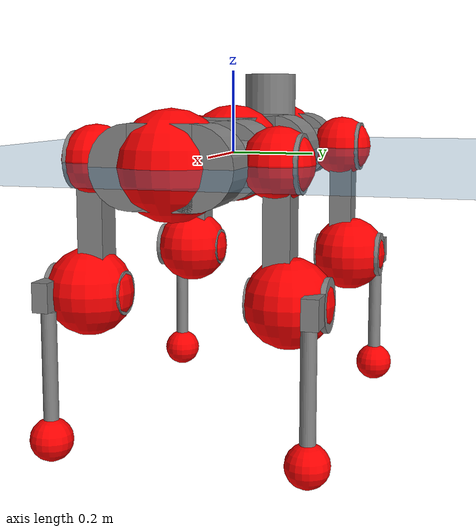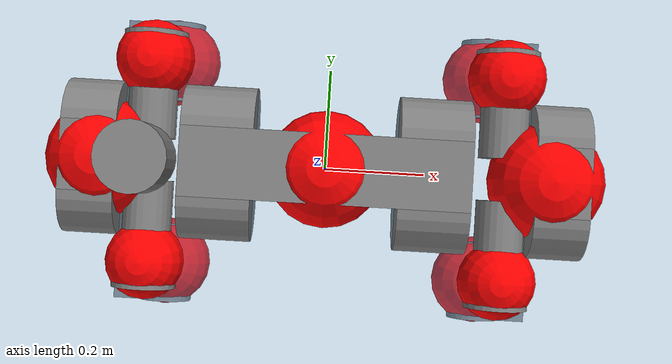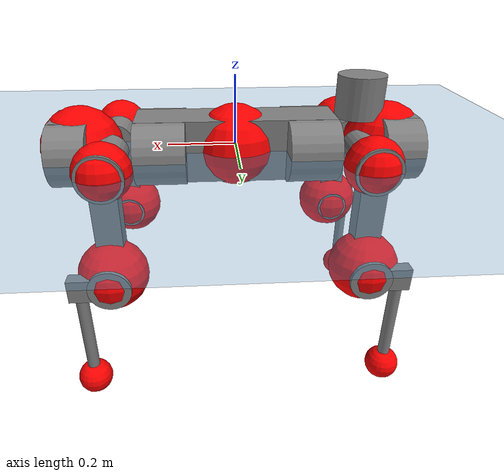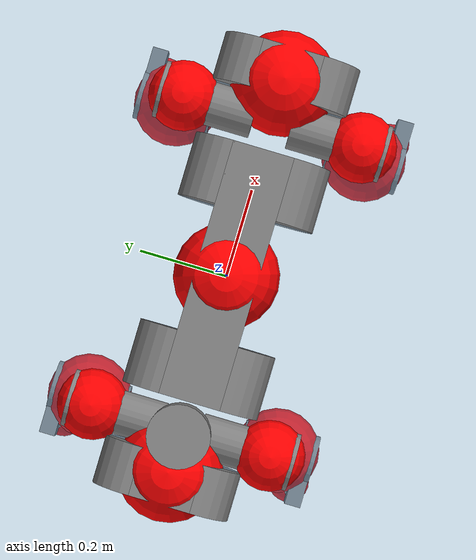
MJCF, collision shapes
<mujoco model="anymal_c">
  <compiler angle="radian" assetdir="assets" balanceinertia="true" inertiafromgeom="false"/>

  <option timestep="0.005" density="1.2" viscosity="2e-05"/>

  <size nkey="1"/>

  <visual>
    <quality shadowsize="8192"/>
    <map shadowclip="0.5"/>
  </visual>

  <default>
    <default class="/">
      <material specular="0" shininess="0.25"/>
      <geom contype="0" conaffinity="0" group="1" solref="-1000 -80"/>
      <site size="0.01 0.005 0.005" group="5"/>
      <general forcelimited="true" forcerange="-80 80" biastype="affine" gainprm="80" biasprm="0 -80 -2"/>
      <default class="anymal_c">
        <joint armature="0.01" damping="0.01" frictionloss="0.1"/>
        <default class="visual">
          <geom type="mesh" group="2"/>
          <default class="visual_zflip"/>
        </default>
        <default class="collision">
          <geom type="cylinder" group="3"/>
          <default class="foot">
            <geom size="0.03 0 0" type="sphere" condim="6" priority="1" friction="0.8 0.02 0.01" solimp="0.015 1 0.03"/>
          </default>
        </default>
      </default>
      <default class="reward_collision_sphere">
        <geom group="5" rgba="1 0 0 1"/>
      </default>
    </default>
  </default>

  <asset>
    <texture type="skybox" colorspace="auto" name="//unnamed_texture_0" builtin="gradient" rgb1="0.95 0.95 0.95" rgb2="0.95 0.95 0.95" width="100" height="600"/>
    <texture type="2d" colorspace="auto" name="texplane" builtin="checker" rgb1="0.345 0.575 0.748" rgb2="0.345 0.575 0.748" markrgb="1 1 1" width="512" height="512"/>
    <texture type="2d" colorspace="linear" name="base" file="base.png"/>
    <texture type="2d" colorspace="linear" name="top_shell" file="top_shell.png"/>
    <texture type="2d" colorspace="linear" name="bottom_shell" file="bottom_shell.png"/>
    <texture type="2d" colorspace="linear" name="remote" file="remote.png"/>
    <texture type="2d" colorspace="linear" name="hatch" file="hatch.png"/>
    <texture type="2d" colorspace="linear" name="handle" file="handle.png"/>
    <texture type="2d" colorspace="linear" name="face" file="face.png"/>
    <texture type="2d" colorspace="linear" name="battery" file="battery.png"/>
    <texture type="2d" colorspace="linear" name="lidar_cage" file="lidar_cage.png"/>
    <texture type="2d" colorspace="linear" name="depth_camera" file="depth_camera.png"/>
    <texture type="2d" colorspace="linear" name="wide_angle_camera" file="wide_angle_camera.png"/>
    <texture type="2d" colorspace="linear" name="lidar" file="lidar.png"/>
    <texture type="2d" colorspace="linear" name="drive" file="drive.png"/>
    <texture type="2d" colorspace="linear" name="hip_l" file="hip_l.png"/>
    <texture type="2d" colorspace="linear" name="shank_l" file="shank_l.png"/>
    <texture type="2d" colorspace="linear" name="foot" file="foot.png"/>
    <texture type="2d" colorspace="linear" name="thigh" file="thigh.png"/>
    <texture type="2d" colorspace="linear" name="shank_r" file="shank_r.png"/>
    <texture type="2d" colorspace="linear" name="hip_r" file="hip_r.png"/>
    <material name="MatPlane" class="/" texture="texplane" texuniform="true" texrepeat="2 2" specular="0.9" shininess="0.5"/>
    <material name="black_plastic" class="/" rgba="0.007 0.007 0.007 1"/>
    <material name="green" class="/" rgba="0.052 0.178 0.033 1"/>
    <material name="red" class="/" rgba="0.178 0.006 0.005 1"/>
    <material name="yellow" class="/" rgba="0.178 0.119 0.006 1"/>
    <material name="lwl" class="/" rgba="0.8 0.8 0.8 1"/>
    <material name="base" class="/" texture="base"/>
    <material name="top_shell" class="/" texture="top_shell"/>
    <material name="bottom_shell" class="/" texture="bottom_shell"/>
    <material name="hip_l" class="/" texture="hip_l"/>
    <material name="thigh" class="/" texture="thigh"/>
    <material name="shank_l" class="/" texture="shank_l"/>
    <material name="foot" class="/" texture="foot"/>
    <material name="hip_r" class="/" texture="hip_r"/>
    <material name="shank" class="/" texture="shank_r"/>
    <material name="hatch" class="/" texture="hatch"/>
    <material name="remote" class="/" texture="remote"/>
    <material name="handle" class="/" texture="handle"/>
    <material name="face" class="/" texture="face"/>
    <material name="depth_camera" class="/" texture="depth_camera"/>
    <material name="wide_angle_camera" class="/" texture="wide_angle_camera"/>
    <material name="battery" class="/" texture="battery"/>
    <material name="lidar_cage" class="/" texture="lidar_cage"/>
    <material name="lidar" class="/" texture="lidar"/>
    <material name="drive" class="/" texture="drive"/>
    <mesh name="base_0" class="/" file="base_0.obj"/>
    <mesh name="base_1" class="/" file="base_1.obj"/>
    <mesh name="base_2" class="/" file="base_2.obj"/>
    <mesh name="base_3" class="/" file="base_3.obj"/>
    <mesh name="base_4" class="/" file="base_4.obj"/>
    <mesh name="base_5" class="/" file="base_5.obj"/>
    <mesh name="top_shell" class="/" file="top_shell.obj"/>
    <mesh name="bottom_shell" class="/" file="bottom_shell.obj"/>
    <mesh name="remote" class="/" file="remote.obj"/>
    <mesh name="handle" class="/" file="handle.obj"/>
    <mesh name="face" class="/" file="face.obj"/>
    <mesh name="wide_angle_camera" class="/" file="wide_angle_camera.obj"/>
    <mesh name="depth_camera" class="/" file="depth_camera.obj"/>
    <mesh name="battery" class="/" file="battery.obj"/>
    <mesh name="lidar_cage" class="/" file="lidar_cage.obj"/>
    <mesh name="lidar" class="/" file="lidar.obj"/>
    <mesh name="drive" class="/" file="drive.obj"/>
    <mesh name="hip_l" class="/" file="hip_l.obj"/>
    <mesh name="thigh" class="/" file="thigh.obj"/>
    <mesh name="shank_l" class="/" file="shank_l.obj"/>
    <mesh name="foot" class="/" file="foot.obj"/>
    <mesh name="hip_r" class="/" file="hip_r.obj"/>
    <mesh name="hatch" class="/" file="hatch.obj"/>
    <mesh name="shank_r" class="/" file="shank_r.obj"/>
  </asset>

  <worldbody>
    <geom name="floor" class="/" size="100 100 0.125" type="plane" group="0" material="MatPlane"/>
    <light name="toplight_shadow" class="/" pos="0 0 5" dir="0.0990148 0.0990148 -0.990148" type="directional" ambient="0.04 0.04 0.04" diffuse="0.55 0.55 0.55" specular="0.12 0.12 0.12"/>
    <light name="toplight_fill" class="/" pos="0 0 5" dir="0.0990148 0.0990148 -0.990148" type="directional" castshadow="false" ambient="0.04 0.04 0.04" diffuse="0.3 0.3 0.3" specular="0.08 0.08 0.08"/>
    <body name="trunk" childclass="anymal_c" pos="0.000514843 0.000219647 -0.00154648" quat="1 -0.000357427 -0.000356451 -0.000301635">
      <inertial pos="0.00228898 0.000173893 0.0528756" quat="0.497943 0.503143 0.501853 0.497034" mass="19.2947" diaginertia="0.634197 0.497912 0.2664"/>
      <joint name="//unnamed_joint_0" type="free" armature="0" damping="0" frictionloss="0"/>
      <geom name="//unnamed_geom_1" class="visual" material="green" mesh="base_0"/>
      <geom name="//unnamed_geom_2" class="visual" material="yellow" mesh="base_1"/>
      <geom name="//unnamed_geom_3" class="visual" material="red" mesh="base_2"/>
      <geom name="//unnamed_geom_4" class="visual" material="black_plastic" mesh="base_3"/>
      <geom name="//unnamed_geom_5" class="visual" material="lwl" mesh="base_4"/>
      <geom name="//unnamed_geom_6" class="visual" material="base" mesh="base_5"/>
      <geom name="trunk_1" class="collision" size="0.288684 0.0696822 0.0895914" type="box"/>
      <geom name="trunk_2" class="collision" size="0.0895914 0.0721709" pos="0.216531 0.0666916 0" quat="0.707107 0 0.707107 0"/>
      <geom name="trunk_3" class="collision" size="0.0895914 0.0721709" pos="-0.216531 0.0666916 0" quat="0.707107 0 0.707107 0"/>
      <geom name="trunk_4" class="collision" size="0.0895914 0.0721709" pos="0.216531 -0.0666916 0" quat="0.707107 0 0.707107 0"/>
      <geom name="trunk_5" class="collision" size="0.0895914 0.0721709" pos="-0.216531 -0.0666916 0" quat="0.707107 0 0.707107 0"/>
      <geom name="//unnamed_geom_12" class="visual" material="top_shell" mesh="top_shell"/>
      <geom name="//unnamed_geom_13" class="visual" material="bottom_shell" mesh="bottom_shell"/>
      <geom name="//unnamed_geom_14" class="visual" material="remote" mesh="remote"/>
      <geom name="//unnamed_geom_15" class="visual" material="handle" mesh="handle"/>
      <geom name="//unnamed_geom_16" class="visual" pos="0.412653 0 0" quat="1 0 0 0" material="face" mesh="face"/>
      <geom name="trunk_6" class="collision" size="0.0547503 0.0696822 0.0895914" pos="0.467408 0 0" type="box"/>
      <geom name="//unnamed_geom_18" class="collision" size="0.0895914 0.0547503" pos="0.467408 0.0666916 0" quat="0.707107 0 0.707107 0"/>
      <geom name="//unnamed_geom_19" class="collision" size="0.0895914 0.0547503" pos="0.467408 -0.0666916 0" quat="0.707107 0 0.707107 0"/>
      <geom name="//unnamed_geom_20" class="visual" pos="0.459595 0 -0.0306359" quat="0.965926 0 0.258819 0" material="depth_camera" mesh="depth_camera"/>
      <geom name="//unnamed_geom_21" class="visual" pos="0.510714 0 0.0155404" material="wide_angle_camera" mesh="wide_angle_camera"/>
      <geom name="//unnamed_geom_22" class="visual_zflip" pos="-0.412653 0 0" quat="0 0 0 1" material="face" mesh="face"/>
      <geom name="trunk_7" class="collision" size="0.0547503 0.0696822 0.0895914" pos="-0.467408 0 0" quat="0 0 0 1" type="box"/>
      <geom name="//unnamed_geom_24" class="collision" size="0.0895914 0.0547503" pos="-0.467408 -0.0666916 0" quat="0 -0.707107 0 0.707107"/>
      <geom name="//unnamed_geom_25" class="collision" size="0.0895914 0.0547503" pos="-0.467408 0.0666916 0" quat="0 -0.707107 0 0.707107"/>
      <geom name="//unnamed_geom_26" class="visual" pos="-0.459595 0 -0.0306359" quat="0 -0.258819 0 0.965926" material="depth_camera" mesh="depth_camera"/>
      <geom name="//unnamed_geom_27" class="visual_zflip" pos="-0.510714 0 0.0155404" quat="0 0 0 1" material="wide_angle_camera" mesh="wide_angle_camera"/>
      <geom name="//unnamed_geom_28" class="visual" material="battery" mesh="battery"/>
      <geom name="//unnamed_geom_29" class="visual" pos="0 0.0722863 0.0298334" quat="0.683013 -0.183013 0.183013 0.683013" material="depth_camera" mesh="depth_camera"/>
      <geom name="//unnamed_geom_30" class="visual" pos="0 -0.0722863 0.0298334" quat="0.683013 0.183013 0.183013 -0.683013" material="depth_camera" mesh="depth_camera"/>
      <geom name="//unnamed_geom_31" class="visual" pos="-0.362378 0 0.0763003" quat="1 0 0 0" material="lidar_cage" mesh="lidar_cage"/>
      <geom name="trunk_8" class="collision" size="0.0696822 0.0597276" pos="-0.362378 0 0.138586"/>
      <geom name="//unnamed_geom_33" class="visual" pos="-0.362378 -1.68178e-05 0.147618" quat="0.707107 0 0 -0.707107" material="lidar" mesh="lidar"/>
      <geom name="//unnamed_geom_34" class="visual" pos="0.298564 0.099115 -1.47252e-09" quat="0.258819 0.965926 0 0" material="drive" mesh="drive"/>
      <geom name="//unnamed_geom_35" class="visual" pos="0.298564 -0.099115 1.47252e-09" quat="0.258819 -0.965926 0 0" material="drive" mesh="drive"/>
      <geom name="//unnamed_geom_36" class="visual" pos="-0.298564 0.099115 1.47252e-09" quat="0 0 0.965926 -0.258819" material="drive" mesh="drive"/>
      <geom name="//unnamed_geom_37" class="visual" pos="-0.298564 -0.099115 -1.47252e-09" quat="0 0 -0.965926 -0.258819" material="drive" mesh="drive"/>
      <geom name="//unnamed_geom_38" class="visual" pos="0.115483 0 0.0757813" quat="1 0 0 0" material="hatch" mesh="hatch"/>
      <geom name="//unnamed_geom_39" class="reward_collision_sphere" size="0.119455"/>
      <geom name="//unnamed_geom_40" class="reward_collision_sphere" size="0.119455" pos="0.447995 0 0"/>
      <geom name="//unnamed_geom_41" class="reward_collision_sphere" size="0.119455" pos="-0.447995 0 0"/>
      <site name="imu" pos="0.249392 0.00401727 0.0473293" size="0.0099546"/>
      <camera name="track" pos="0 -1.90547 0" quat="0.707107 0.707107 0 0" mode="trackcom"/>
      <camera name="ego_camera" pos="0.447995 0 -0.041524" quat="-0.5 -0.5 0.5 0.5"/>
      <body name="LF_HIP" pos="0.299014 0.0985344 0.000200112" quat="0.258806 0.965929 5.79082e-05 -8.58219e-05">
        <inertial pos="0.0555027 -0.0142271 -0.00996848" quat="-0.124104 0.707637 -0.140758 0.681201" mass="2.77131" diaginertia="0.00577804 0.0039184 0.00401178"/>
        <joint name="LF_HAA" pos="0 0 0" axis="1 9.38582e-05 0.000188765" range="-0.718884 0.471065" armature="0.00994764" damping="0.0109212" frictionloss="0.0949563"/>
        <geom name="//unnamed_geom_42" class="visual" pos="0 -8.66216e-05 1.42275e-05" quat="0.258819 -0.965926 0 0" material="hip_l" mesh="hip_l"/>
        <geom name="//unnamed_geom_43" class="visual" pos="0.0596331 -0.0717249 -0.0420418" quat="0.183013 -0.683013 0.683013 0.183013" material="drive" mesh="drive"/>
        <geom name="//unnamed_geom_44" class="collision" size="0.049773 0.0696822" pos="0.0596331 -0.0113945 -0.00716808" quat="-0.353553 -0.612372 0.612372 -0.353553"/>
        <body name="LF_THIGH" pos="0.0598144 -0.07027 -0.0431263" quat="0.183104 -0.683072 0.682924 0.183031">
          <inertial pos="0.0308015 7.22035e-05 -0.254785" quat="0.993471 -0.00511868 -0.0793819 0.0817823" mass="3.00344" diaginertia="0.0294025 0.0232449 0.00497947"/>
          <joint name="LF_HFE" pos="0 0 0" axis="1 -0.000155543 0.000562337" stiffness="0.00324804" range="-3.12673 3.13781" armature="0.0100311" damping="0.00701827" frictionloss="0.0994342"/>
          <geom name="//unnamed_geom_45" class="visual" pos="0.000851693 1.34207e-06 0" quat="0.707107 0 0 -0.707107" material="thigh" mesh="thigh"/>
          <geom name="//unnamed_geom_46" class="collision" size="0.0647049 0.0398184" pos="0.0398218 0 0" quat="0.5 0.5 -0.5 -0.5"/>
          <geom name="//unnamed_geom_47" class="collision" size="0.0373298 0.0298638 0.140672" pos="0.0298663 0 -0.146698" quat="0.707107 0 0 -0.707107" type="box"/>
          <geom name="//unnamed_geom_48" class="visual" pos="0.0998531 0 -0.295858" quat="1 0 0 0" material="drive" mesh="drive"/>
          <geom name="//unnamed_geom_49" class="collision" size="0.049773 0.0696822" pos="0.030165 0 -0.295858" quat="0.707107 0 0.707107 0"/>
          <geom name="//unnamed_geom_50" class="reward_collision_sphere" size="0.0796368" pos="0.0248886 0 0"/>
          <body name="LF_SHANK" pos="0.0996885 -0.000839743 -0.296005" quat="1 -3.379e-05 2.04159e-05 5.27645e-05">
            <inertial pos="0.00351876 -0.0596211 -0.0839159" quat="0.992854 -0.116385 -0.00102148 -0.0263625" mass="0.583539" diaginertia="0.00984328 0.00731361 0.00135095"/>
            <joint name="LF_KFE" pos="0 0 0" axis="0.999998 -0.000166252 -0.00175952" range="-3.17683 3.12313" armature="0.00989257" damping="0.00845331" frictionloss="0.107851"/>
            <geom name="//unnamed_geom_51" class="visual" pos="0.000277719 0.00148081 0" quat="0.707107 0 0 -0.707107" material="shank_l" mesh="shank_l"/>
            <geom name="LF_kfe_act" class="collision" size="0.0597276 0.0199092" pos="0.0199109 0 0" quat="0.5 0.5 -0.5 -0.5"/>
            <geom name="//unnamed_geom_53" class="collision" size="0.057238 0.0335968 0.0189137" pos="0.0199109 -0.0547814 0" quat="0.5 0.5 -0.5 -0.5" type="box"/>
            <geom name="//unnamed_geom_54" class="visual" pos="0.0129918 -0.083316 -0.350847" quat="0.382683 0 0 -0.92388" material="foot" mesh="foot"/>
            <geom name="LF_calf" class="collision" size="0.0174206 0.140611" pos="0.0129919 -0.0837932 -0.175423" quat="0.707107 0 0 -0.707107"/>
            <geom name="LF_foot" class="foot" size="0.0296387" pos="0.0129919 -0.0837932 -0.327489" quat="0.707107 0 0 -0.707107"/>
            <geom name="//unnamed_geom_57" class="reward_collision_sphere" size="0.099546" pos="-0.0497772 0 0"/>
            <geom name="//unnamed_geom_58" class="reward_collision_sphere" size="0.049773" pos="0.0129919 -0.0837932 -0.327489"/>
            <site name="LF_foot" class="foot" pos="0.0129919 -0.0837932 -0.327489" quat="0.707107 0 0 -0.707107" size="0.0099546"/>
          </body>
        </body>
      </body>
      <body name="RF_HIP" pos="0.299939 -0.0999408 1.91452e-07" quat="0.258711 -0.965954 0.000561724 0.000551739">
        <inertial pos="0.0574061 0.014989 -0.00896791" quat="0.132207 0.68415 0.123765 0.7065" mass="2.81609" diaginertia="0.00579629 0.00389994 0.00401844"/>
        <joint name="RF_HAA" pos="0 0 0" axis="0.999984 0.00454495 0.00344321" range="-0.523531 0.739558" armature="0.00990141" damping="0.0145067" frictionloss="0.0967782"/>
        <geom name="//unnamed_geom_59" class="visual" pos="0 8.66209e-05 1.42275e-05" quat="0.258819 0.965926 0 0" material="hip_r" mesh="hip_r"/>
        <geom name="//unnamed_geom_60" class="visual" pos="0.0596331 0.0717249 -0.0420418" quat="0.183013 0.683013 0.683013 -0.183013" material="drive" mesh="drive"/>
        <geom name="//unnamed_geom_61" class="collision" size="0.049773 0.0696822" pos="0.0596331 0.0113945 -0.00716808" quat="-0.353553 0.612372 0.612372 0.353553"/>
        <body name="RF_THIGH" pos="0.059613 0.0696824 -0.043188" quat="0.182638 0.683001 0.683037 -0.18334">
          <inertial pos="0.0317254 3.06792e-05 -0.25459" quat="0.992891 -0.00394252 -0.0796569 0.0883553" mass="3.03408" diaginertia="0.0295003 0.0233909 0.00498823"/>
          <joint name="RF_HFE" pos="0 0 0" axis="1 0.000164892 -0.000158902" stiffness="0.00455384" range="-3.14158 3.15559" armature="0.0104656" damping="0" frictionloss="0.098547"/>
          <geom name="//unnamed_geom_62" class="visual" pos="0.000851693 1.34207e-06 0" quat="0.707107 0 0 -0.707107" material="thigh" mesh="thigh"/>
          <geom name="//unnamed_geom_63" class="collision" size="0.0647049 0.0398184" pos="0.0398218 0 0" quat="0.5 0.5 0.5 0.5"/>
          <geom name="//unnamed_geom_64" class="collision" size="0.0373298 0.0298638 0.140672" pos="0.0298663 0 -0.146698" quat="0.707107 0 0 0.707107" type="box"/>
          <geom name="//unnamed_geom_65" class="visual" pos="0.0998531 0 -0.295858" quat="1 0 0 0" material="drive" mesh="drive"/>
          <geom name="//unnamed_geom_66" class="collision" size="0.049773 0.0696822" pos="0.030165 0 -0.295858" quat="0.707107 0 0.707107 0"/>
          <geom name="//unnamed_geom_67" class="reward_collision_sphere" size="0.0796368" pos="0.0248886 0 0"/>
          <body name="RF_SHANK" pos="0.0981503 0.000280167 -0.2958" quat="1 -7.79408e-05 -5.10861e-05 6.49643e-05">
            <inertial pos="0.00558276 0.0573781 -0.0833035" quat="0.993445 0.111998 -0.00790807 0.0214805" mass="0.569004" diaginertia="0.00980722 0.00722236 0.00134113"/>
            <joint name="RF_KFE" pos="0 0 0" axis="0.999991 0.00390112 -0.00190185" stiffness="0.00148716" range="-3.13908 3.1268" armature="0.0098347" damping="0.00598043" frictionloss="0.104358"/>
            <geom name="//unnamed_geom_68" class="visual" pos="0.000277717 -0.00148081 0" quat="0.707107 0 0 0.707107" material="shank" mesh="shank_r"/>
            <geom name="RF_kfe_act" class="collision" size="0.0597276 0.0199092" pos="0.0199109 0 0" quat="0.5 0.5 0.5 0.5"/>
            <geom name="//unnamed_geom_70" class="collision" size="0.057238 0.0335968 0.0189137" pos="0.0199109 0.0547814 0" quat="0.5 0.5 0.5 0.5" type="box"/>
            <geom name="//unnamed_geom_71" class="visual" pos="0.0129919 0.083316 -0.350847" quat="0.382683 0 0 0.92388" material="foot" mesh="foot"/>
            <geom name="RF_calf" class="collision" size="0.0174206 0.140611" pos="0.0129919 0.0837932 -0.175423" quat="0.707107 0 0 0.707107"/>
            <geom name="RF_foot" class="foot" size="0.0291919" pos="0.0129919 0.0837932 -0.327489" quat="0.707107 0 0 0.707107"/>
            <geom name="//unnamed_geom_74" class="reward_collision_sphere" size="0.099546" pos="-0.0497772 0 0"/>
            <geom name="//unnamed_geom_75" class="reward_collision_sphere" size="0.049773" pos="0.0129919 0.0837932 -0.327489"/>
            <site name="RF_foot" class="foot" pos="0.0129919 0.0837932 -0.327489" quat="0.707107 0 0 0.707107" size="0.0099546"/>
          </body>
        </body>
      </body>
      <body name="LH_HIP" pos="-0.29838 0.0994781 0.00071774" quat="-0.000321872 -6.85288e-05 0.965959 -0.258695">
        <inertial pos="0.0569927 0.0132837 -0.0102989" quat="0.131921 0.681303 0.126714 0.708779" mass="2.7547" diaginertia="0.00585687 0.00385695 0.00400238"/>
        <joint name="LH_HAA" pos="0 0 0" axis="0.999983 -0.00461181 -0.00349606" range="-0.51051 0.745625" armature="0.010245" damping="0.00875146" frictionloss="0.0996716"/>
        <geom name="//unnamed_geom_76" class="visual" pos="0 8.66209e-05 1.42275e-05" quat="-0.258819 -0.965926 0 0" material="hip_r" mesh="hip_r"/>
        <geom name="//unnamed_geom_77" class="visual" pos="0.0596331 0.0717249 -0.0420418" quat="0.183013 0.683013 0.683013 -0.183013" material="drive" mesh="drive"/>
        <geom name="//unnamed_geom_78" class="collision" size="0.049773 0.0696822" pos="0.0596331 0.0113945 -0.00716808" quat="-0.353553 0.612372 0.612372 0.353553"/>
        <body name="LH_THIGH" pos="0.0594036 0.0684741 -0.041899" quat="0.18301 0.682909 0.683097 -0.183089">
          <inertial pos="0.0325348 -1.58609e-05 -0.256544" quat="0.992767 -0.0050885 -0.0806907 0.0887553" mass="3.10781" diaginertia="0.030733 0.0241793 0.00514061"/>
          <joint name="LH_HFE" pos="0 0 0" axis="0.999966 -0.00652212 -0.00511633" range="-3.13193 3.13557" armature="0.00987373" damping="0" frictionloss="0.0947359"/>
          <geom name="//unnamed_geom_79" class="visual" pos="0.000851693 1.34207e-06 0" quat="0.707107 0 0 -0.707107" material="thigh" mesh="thigh"/>
          <geom name="//unnamed_geom_80" class="collision" size="0.0647049 0.0398184" pos="0.0398218 0 0" quat="0.5 0.5 -0.5 -0.5"/>
          <geom name="//unnamed_geom_81" class="collision" size="0.0373298 0.0298638 0.140672" pos="0.0298663 0 -0.146698" quat="0.707107 0 0 -0.707107" type="box"/>
          <geom name="//unnamed_geom_82" class="visual" pos="0.0998531 0 -0.295858" quat="1 0 0 0" material="drive" mesh="drive"/>
          <geom name="//unnamed_geom_83" class="collision" size="0.049773 0.0696822" pos="0.030165 0 -0.295858" quat="0.707107 0 0.707107 0"/>
          <geom name="//unnamed_geom_84" class="reward_collision_sphere" size="0.0796368" pos="0.0248886 0 0"/>
          <body name="LH_SHANK" pos="0.10028 -0.00027986 -0.29699" quat="1 -8.14265e-05 0.00011454 0.000234578">
            <inertial pos="0.0039903 0.0577718 -0.0854224" quat="0.99262 0.119283 -0.000879317 0.0218233" mass="0.580892" diaginertia="0.00994906 0.00735928 0.00133731"/>
            <joint name="LH_KFE" pos="0 0 0" axis="0.999999 -0.000637893 -0.00098173" range="-3.13425 3.10302" armature="0.0104403" damping="0" frictionloss="0.0994427"/>
            <geom name="//unnamed_geom_85" class="visual" pos="0.000277717 -0.00148081 0" quat="-0.707107 0 0 -0.707107" material="shank" mesh="shank_r"/>
            <geom name="LH_kfe_act" class="collision" size="0.0597276 0.0199092" pos="0.0199109 0 0" quat="0.5 0.5 -0.5 -0.5"/>
            <geom name="//unnamed_geom_87" class="collision" size="0.057238 0.0335968 0.0189137" pos="0.0199109 0.0547814 0" quat="0.5 0.5 -0.5 -0.5" type="box"/>
            <geom name="//unnamed_geom_88" class="visual" pos="0.0129919 0.083316 -0.350847" quat="-0.382683 0 0 -0.92388" material="foot" mesh="foot"/>
            <geom name="LH_calf" class="collision" size="0.0174206 0.140611" pos="0.0129919 0.0837932 -0.175423" quat="0.707107 0 0 -0.707107"/>
            <geom name="LH_foot" class="foot" size="0.0300549" pos="0.0129919 0.0837932 -0.327489" quat="0.707107 0 0 -0.707107"/>
            <geom name="//unnamed_geom_91" class="reward_collision_sphere" size="0.099546" pos="-0.0497772 0 0"/>
            <geom name="//unnamed_geom_92" class="reward_collision_sphere" size="0.049773" pos="0.0129919 0.0837932 -0.327489"/>
            <site name="LH_foot" class="foot" pos="0.0129919 0.0837932 -0.327489" quat="0.707107 0 0 -0.707107" size="0.0099546"/>
          </body>
        </body>
      </body>
      <body name="RH_HIP" pos="-0.296676 -0.098928 0.000856714" quat="7.20285e-06 1.98685e-06 -0.965932 -0.258796">
        <inertial pos="0.0561069 -0.0139537 -0.00878753" quat="-0.129159 0.711644 -0.139159 0.676398" mass="2.72926" diaginertia="0.00593265 0.00392165 0.00399763"/>
        <joint name="RH_HAA" pos="0 0 0" axis="0.999943 -0.00554037 -0.00911715" range="-0.702971 0.493367" armature="0.00992887" damping="0.0101362" frictionloss="0.108593"/>
        <geom name="//unnamed_geom_93" class="visual" pos="0 -8.66216e-05 1.42275e-05" quat="-0.258819 0.965926 0 0" material="hip_l" mesh="hip_l"/>
        <geom name="//unnamed_geom_94" class="visual" pos="0.0596331 -0.0717249 -0.0420418" quat="-0.183013 0.683013 -0.683013 -0.183013" material="drive" mesh="drive"/>
        <geom name="//unnamed_geom_95" class="collision" size="0.049773 0.0696822" pos="0.0596331 -0.0113945 -0.00716808" quat="0.353553 0.612372 -0.612372 0.353553"/>
        <body name="RH_THIGH" pos="0.0591302 -0.0692649 -0.0431989" quat="-0.183111 0.683147 -0.682888 -0.182879">
          <inertial pos="0.0298917 0.000901715 -0.255667" quat="0.993389 -0.00372634 -0.0788651 0.0833369" mass="2.9821" diaginertia="0.0300142 0.0236004 0.0050789"/>
          <joint name="RH_HFE" pos="0 0 0" axis="0.999991 -0.00137469 0.0040561" range="-3.14437 3.14287" armature="0.0100936" damping="0.0140428" frictionloss="0.100579"/>
          <geom name="//unnamed_geom_96" class="visual" pos="0.000851693 1.34207e-06 0" quat="0.707107 0 0 -0.707107" material="thigh" mesh="thigh"/>
          <geom name="//unnamed_geom_97" class="collision" size="0.0647049 0.0398184" pos="0.0398218 0 0" quat="0.5 0.5 0.5 0.5"/>
          <geom name="//unnamed_geom_98" class="collision" size="0.0373298 0.0298638 0.140672" pos="0.0298663 0 -0.146698" quat="0.707107 0 0 0.707107" type="box"/>
          <geom name="//unnamed_geom_99" class="visual" pos="0.0998531 0 -0.295858" quat="1 0 0 0" material="drive" mesh="drive"/>
          <geom name="//unnamed_geom_100" class="collision" size="0.049773 0.0696822" pos="0.030165 0 -0.295858" quat="0.707107 0 0.707107 0"/>
          <geom name="//unnamed_geom_101" class="reward_collision_sphere" size="0.0796368" pos="0.0248886 0 0"/>
          <body name="RH_SHANK" pos="0.0980982 0.000305535 -0.296124" quat="1 -0.000439542 -0.000553293 -0.000548037">
            <inertial pos="0.00484556 -0.0584047 -0.0839349" quat="0.993451 -0.111079 -0.00285934 -0.0266075" mass="0.572976" diaginertia="0.00979125 0.00710461 0.00131727"/>
            <joint name="RH_KFE" pos="0 0 0" axis="0.999924 0.00438385 0.0115248" range="-3.1074 3.13686" armature="0.0100253" damping="0.000619582" frictionloss="0.100932"/>
            <geom name="//unnamed_geom_102" class="visual" pos="0.000277719 0.00148081 0" quat="0.707107 0 0 -0.707107" material="shank_l" mesh="shank_l"/>
            <geom name="RH_kfe_act" class="collision" size="0.0597276 0.0199092" pos="0.0199109 0 0" quat="0.5 0.5 0.5 0.5"/>
            <geom name="//unnamed_geom_104" class="collision" size="0.057238 0.0335968 0.0189137" pos="0.0199109 -0.0547814 0" quat="0.5 0.5 0.5 0.5" type="box"/>
            <geom name="//unnamed_geom_105" class="visual" pos="0.0129918 -0.083316 -0.350847" quat="0.382683 0 0 -0.92388" material="foot" mesh="foot"/>
            <geom name="RH_calf" class="collision" size="0.0174206 0.140611" pos="0.0129919 -0.0837932 -0.175423" quat="0.707107 0 0 0.707107"/>
            <geom name="RH_foot" class="foot" size="0.0301326" pos="0.0129919 -0.0837932 -0.327489" quat="0.707107 0 0 0.707107"/>
            <geom name="//unnamed_geom_108" class="reward_collision_sphere" size="0.099546" pos="-0.0497772 0 0"/>
            <geom name="//unnamed_geom_109" class="reward_collision_sphere" size="0.049773" pos="0.0129919 -0.0837932 -0.327489"/>
            <site name="RH_foot" class="foot" pos="0.0129919 -0.0837932 -0.327489" quat="0.707107 0 0 0.707107" size="0.0099546"/>
          </body>
        </body>
      </body>
    </body>
  </worldbody>

  <contact>
    <pair class="/" geom1="floor" geom2="LF_foot" name="//unnamed_contact_0"/>
    <pair class="/" geom1="floor" geom2="RF_foot" name="//unnamed_contact_1"/>
    <pair class="/" geom1="floor" geom2="LH_foot" name="//unnamed_contact_2"/>
    <pair class="/" geom1="floor" geom2="RH_foot" name="//unnamed_contact_3"/>
  </contact>

  <actuator>
    <general name="LF_HAA" class="/" joint="LF_HAA" forcerange="-79.8963 79.8963" gainprm="81.1422" biasprm="0 -81.1422 -1.97766"/>
    <general name="LF_HFE" class="/" joint="LF_HFE" forcerange="-80.3031 80.3031" gainprm="81.1422" biasprm="0 -81.1422 -1.97766"/>
    <general name="LF_KFE" class="/" joint="LF_KFE" forcerange="-77.6776 77.6776" gainprm="81.1422" biasprm="0 -81.1422 -1.97766"/>
    <general name="RF_HAA" class="/" joint="RF_HAA" forcerange="-78.6396 78.6396" gainprm="81.1422" biasprm="0 -81.1422 -1.97766"/>
    <general name="RF_HFE" class="/" joint="RF_HFE" forcerange="-78.3323 78.3323" gainprm="81.1422" biasprm="0 -81.1422 -1.97766"/>
    <general name="RF_KFE" class="/" joint="RF_KFE" forcerange="-79.6153 79.6153" gainprm="81.1422" biasprm="0 -81.1422 -1.97766"/>
    <general name="LH_HAA" class="/" joint="LH_HAA" forcerange="-80.1846 80.1846" gainprm="81.1422" biasprm="0 -81.1422 -1.97766"/>
    <general name="LH_HFE" class="/" joint="LH_HFE" forcerange="-75.8287 75.8287" gainprm="81.1422" biasprm="0 -81.1422 -1.97766"/>
    <general name="LH_KFE" class="/" joint="LH_KFE" forcerange="-83.7195 83.7195" gainprm="81.1422" biasprm="0 -81.1422 -1.97766"/>
    <general name="RH_HAA" class="/" joint="RH_HAA" forcerange="-80.0799 80.0799" gainprm="81.1422" biasprm="0 -81.1422 -1.97766"/>
    <general name="RH_HFE" class="/" joint="RH_HFE" forcerange="-81.8237 81.8237" gainprm="81.1422" biasprm="0 -81.1422 -1.97766"/>
    <general name="RH_KFE" class="/" joint="RH_KFE" forcerange="-77.5673 77.5673" gainprm="81.1422" biasprm="0 -81.1422 -1.97766"/>
  </actuator>

  <sensor>
    <gyro site="imu" name="imu_angular_velocity"/>
    <velocimeter site="imu" name="imu_linear_velocity"/>
    <framelinvel objtype="site" objname="LF_foot" name="LF_foot_global_linear_velocity"/>
    <framelinvel objtype="site" objname="RF_foot" name="RF_foot_global_linear_velocity"/>
    <framelinvel objtype="site" objname="LH_foot" name="LH_foot_global_linear_velocity"/>
    <framelinvel objtype="site" objname="RH_foot" name="RH_foot_global_linear_velocity"/>
  </sensor>

  <keyframe>
    <key name="home" qpos="0 0 0.55 1 0 0 0 0 0.4 -0.8 0 -0.4 0.8 0 -0.4 0.8 0 0.4 -0.8"/>
  </keyframe>
</mujoco>
